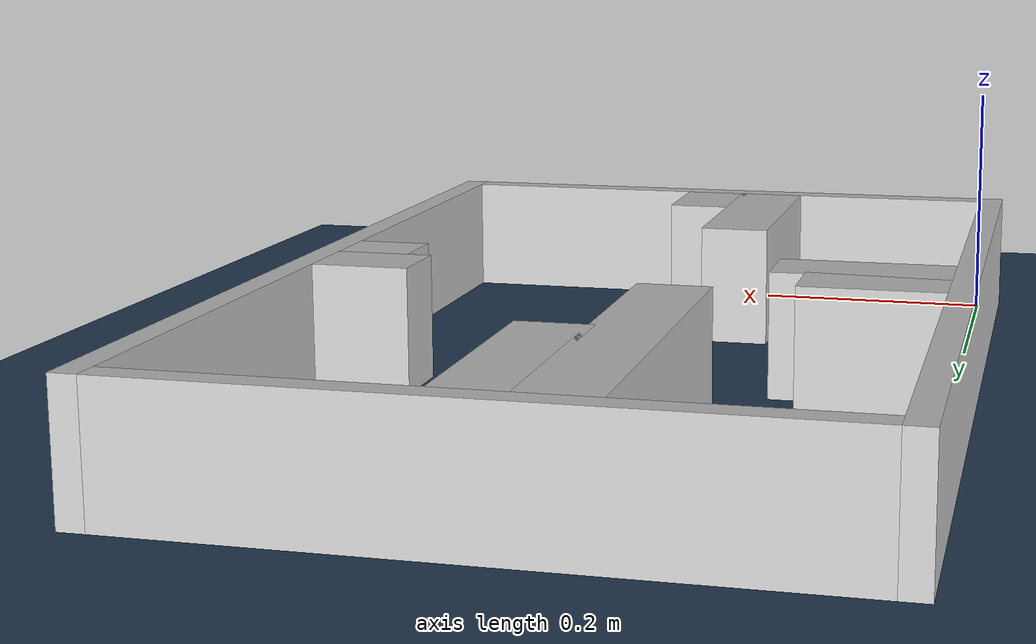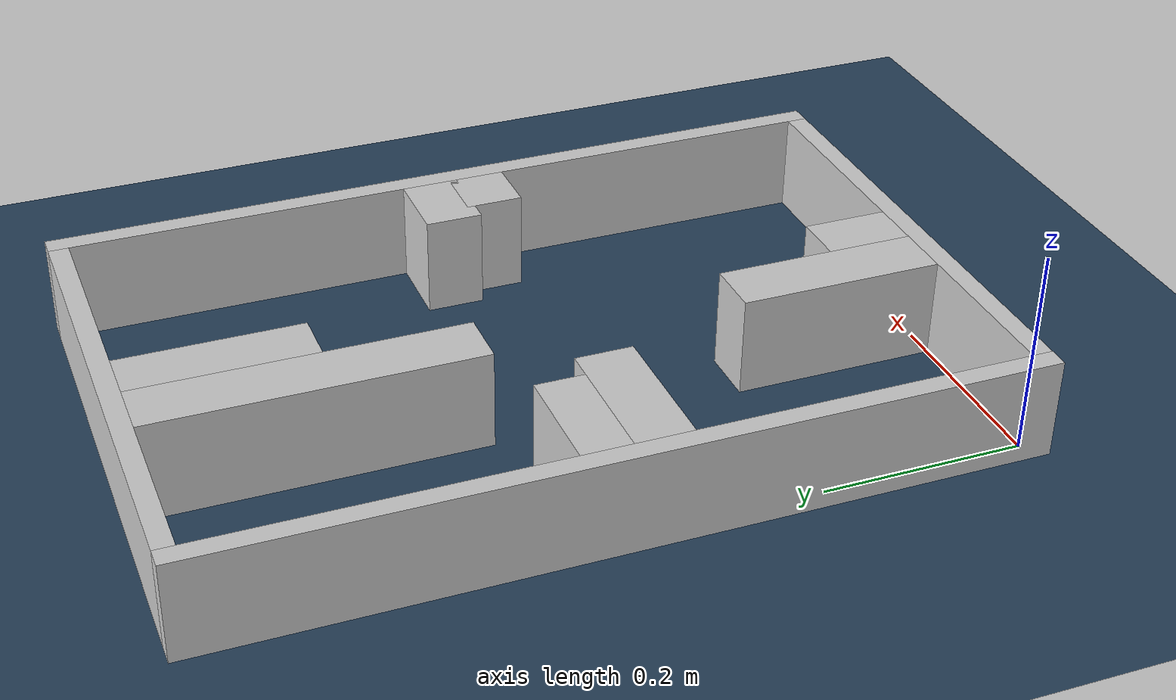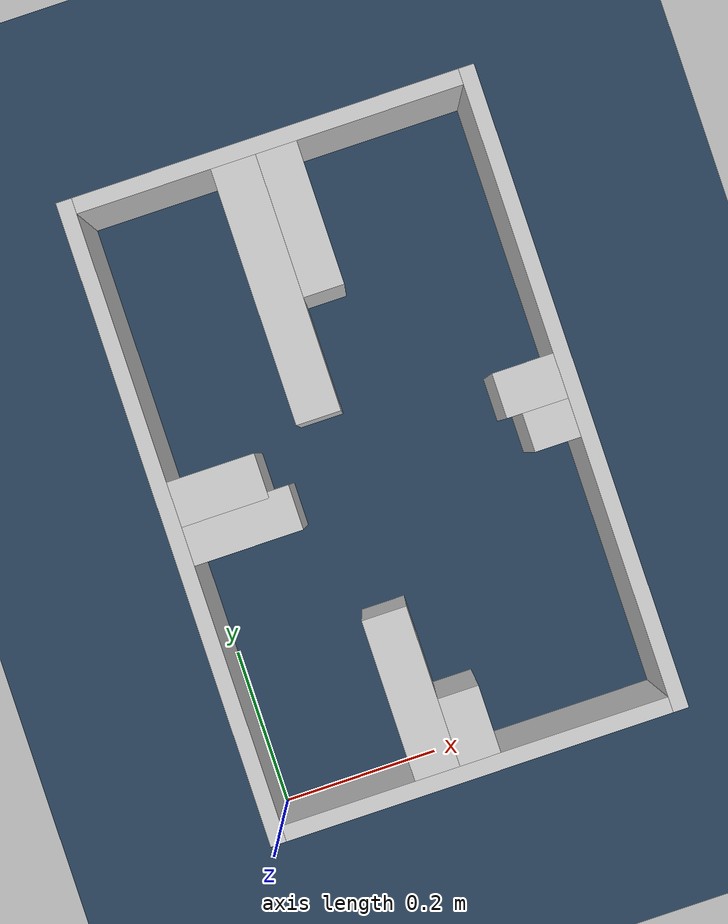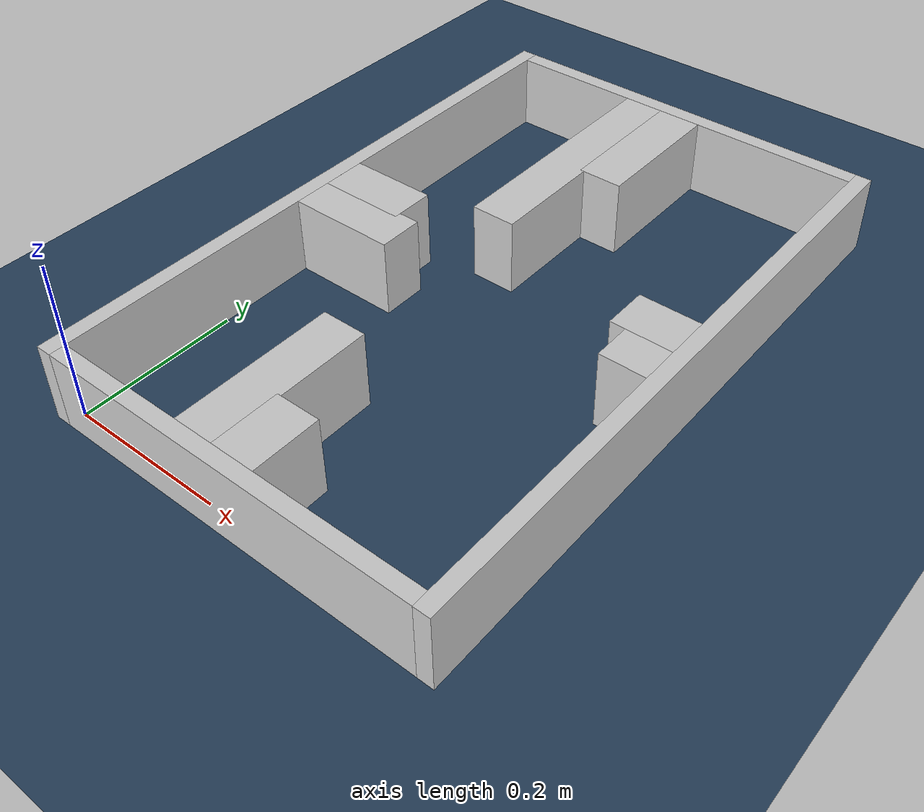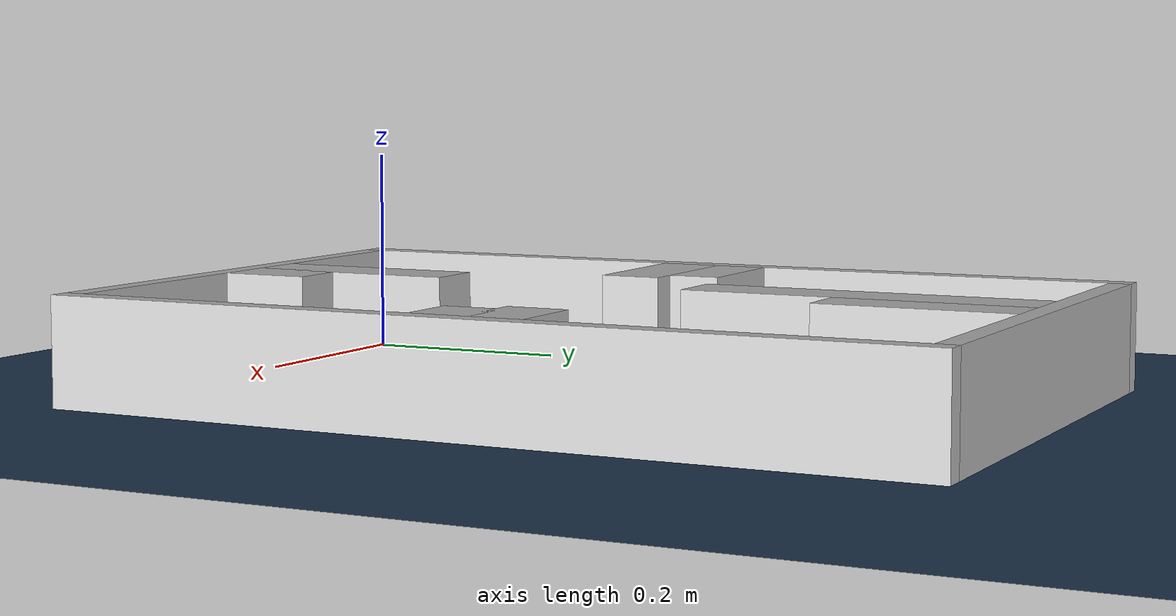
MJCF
<?xml version="1.0" ?>
<mujoco model="generated_real_template">
  <compiler angle="degree"/>
  <option timestep="0.002" integrator="implicitfast" iterations="100" cone="elliptic"/>
  <default>
    <geom density="1"/>
  </default>
  <asset>
    <texture builtin="gradient" height="3072" rgb1="0.3 0.5 0.7" rgb2="0 0 0" type="skybox" width="512"/>
    <texture builtin="checker" height="300" mark="edge" markrgb="0.8 0.8 0.8" name="groundplane" rgb1="0.2 0.3 0.4" rgb2="0.1 0.2 0.3" type="2d" width="300"/>
    <material name="groundplane" reflectance="0.2" texrepeat="5 5" texture="groundplane" texuniform="true"/>
  </asset>
  <worldbody>
    <light dir="0 0 -1" directional="true" pos="0 0 1.5"/>
    <geom name="floor" type="plane" condim="4" friction="0.5 0.005 0.001" material="groundplane" size="0 0 0.05"/>
    <body name="walls">
      <geom name="wall_boundary_left" type="box" condim="4" friction="1.0 0.005 0.0001" rgba="0.8 0.8 0.8 1" pos="-0.010000 0.387500 0.050000" euler="0 0 0.000000" size="0.010000 0.407500 0.050000"/>
      <geom name="wall_boundary_right" type="box" condim="4" friction="1.0 0.005 0.0001" rgba="0.8 0.8 0.8 1" pos="0.500000 0.387500 0.050000" euler="0 0 0.000000" size="0.010000 0.407500 0.050000"/>
      <geom name="wall_boundary_bottom" type="box" condim="4" friction="1.0 0.005 0.0001" rgba="0.8 0.8 0.8 1" pos="0.245000 -0.010000 0.050000" euler="0 0 0.000000" size="0.245000 0.010000 0.050000"/>
      <geom name="wall_boundary_top" type="box" condim="4" friction="1.0 0.005 0.0001" rgba="0.8 0.8 0.8 1" pos="0.245000 0.785000 0.050000" euler="0 0 0.000000" size="0.245000 0.010000 0.050000"/>
      <geom name="wall_inner_1_1" type="box" condim="4" friction="1.0 0.005 0.0001" rgba="0.8 0.8 0.8 1" pos="0.197963 0.101533 0.050000" euler="0 0 90.000000" size="0.101533 0.028500 0.050000"/>
      <geom name="wall_inner_1_2" type="box" condim="4" friction="1.0 0.005 0.0001" rgba="0.8 0.8 0.8 1" pos="0.197963 0.612743 0.050000" euler="0 0 90.000000" size="0.162257 0.028500 0.050000"/>
      <geom name="wall_inner_2_1" type="box" condim="4" friction="1.0 0.005 0.0001" rgba="0.8 0.8 0.8 1" pos="0.249935 0.042606 0.050000" euler="0 0 90.000000" size="0.042606 0.028500 0.050000"/>
      <geom name="wall_inner_2_2" type="box" condim="4" friction="1.0 0.005 0.0001" rgba="0.8 0.8 0.8 1" pos="0.249935 0.684122 0.050000" euler="0 0 90.000000" size="0.090878 0.028500 0.050000"/>
      <geom name="wall_inner_3_1" type="box" condim="4" friction="1.0 0.005 0.0001" rgba="0.8 0.8 0.8 1" pos="0.055538 0.406537 0.050000" euler="0 0 0.000000" size="0.055538 0.028500 0.050000"/>
      <geom name="wall_inner_3_2" type="box" condim="4" friction="1.0 0.005 0.0001" rgba="0.8 0.8 0.8 1" pos="0.451059 0.406537 0.050000" euler="0 0 0.000000" size="0.038941 0.028500 0.050000"/>
      <geom name="wall_inner_4_1" type="box" condim="4" friction="1.0 0.005 0.0001" rgba="0.8 0.8 0.8 1" pos="0.069114 0.357413 0.050000" euler="0 0 0.000000" size="0.069114 0.028500 0.050000"/>
      <geom name="wall_inner_4_2" type="box" condim="4" friction="1.0 0.005 0.0001" rgba="0.8 0.8 0.8 1" pos="0.460811 0.357413 0.050000" euler="0 0 0.000000" size="0.029189 0.028500 0.050000"/>
    </body>
  </worldbody>
</mujoco>
